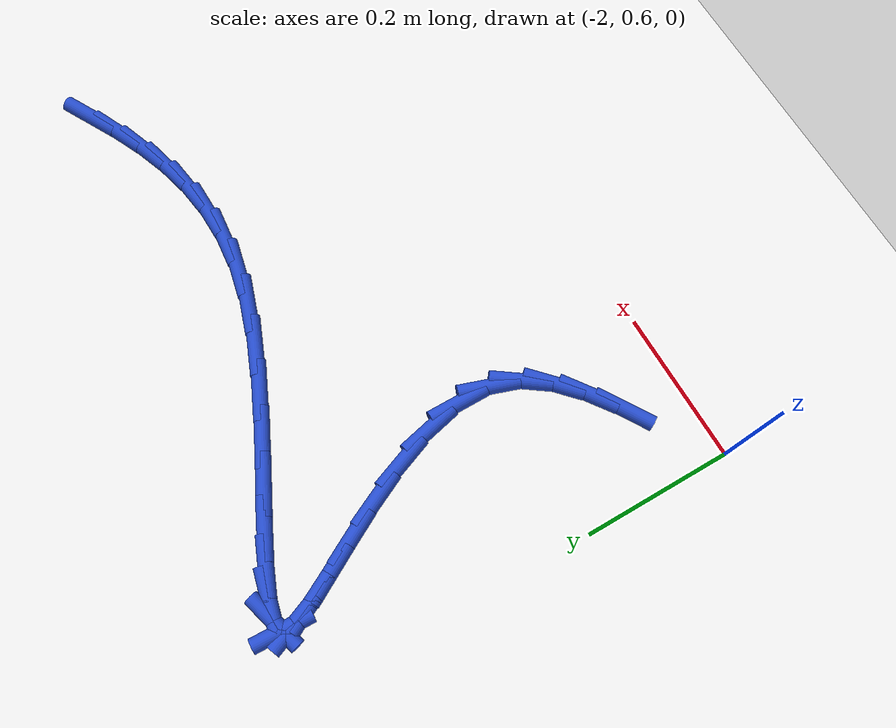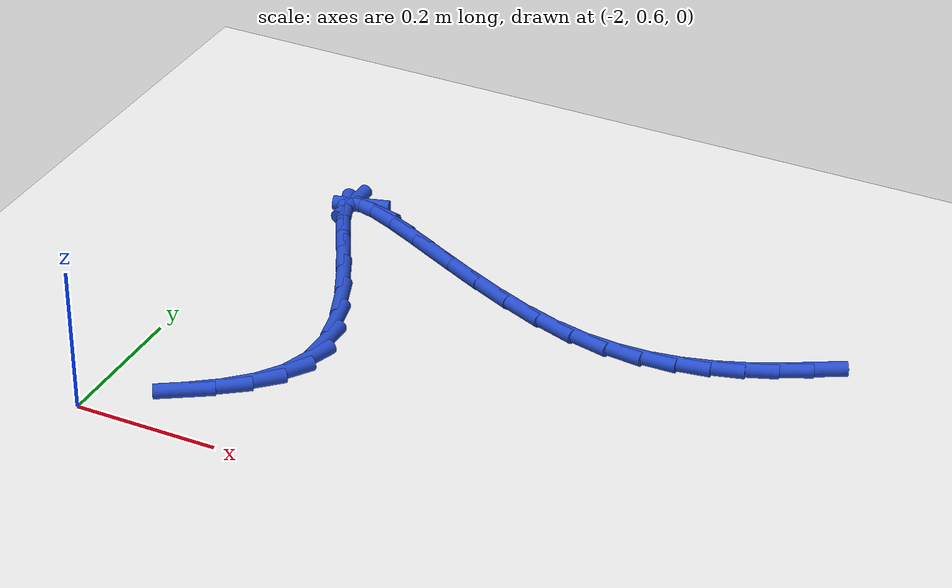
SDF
<sdf version="1.6">
 <world name="default">
  <model name="ground_plane">
   <static>1</static>
   <link name="link">
    <collision name="collision">
     <geometry><plane><normal>0 0 1</normal><size>100 100</size></plane></geometry>
     <surface><friction><ode><mu>100</mu><mu2>50</mu2></ode></friction></surface>
    </collision>
    <visual name="visual">
     <cast_shadows>0</cast_shadows>
     <geometry><plane><normal>0 0 1</normal><size>100 100</size></plane></geometry>
     <material>
      <script><uri>file://media/materials/scripts/gazebo.material</uri><name>Gazebo/WhiteGlow</name></script>
     </material>
    </visual>
   </link>
  </model>
  <model name="line">
   <link name="link_44">
    <pose>-1.1876230271420563 1.081210722739638 0.01 0 1.57 0.5052743356407918</pose>
    <collision name="collision">
     <geometry><cylinder><radius>0.01</radius><length>0.08</length></cylinder></geometry>
    </collision>
    <visual name="visual">
     <material>
      <script><name>Gazebo/Blue</name><uri>file://media/materials/scripts/gazebo.material</uri></script>
     </material>
     <geometry><cylinder><radius>0.01</radius><length>0.08</length></cylinder></geometry>
    </visual>
   </link>
   <link name="link_45">
    <pose>-1.2265779695516135 1.0596619866321677 0.01 0 1.57 0.4454856443325451</pose>
    <collision name="collision">
     <geometry><cylinder><radius>0.01</radius><length>0.08</length></cylinder></geometry>
    </collision>
    <visual name="visual">
     <material>
      <script><name>Gazebo/Blue</name><uri>file://media/materials/scripts/gazebo.material</uri></script>
     </material>
     <geometry><cylinder><radius>0.01</radius><length>0.08</length></cylinder></geometry>
    </visual>
   </link>
   <link name="link_46">
    <pose>-1.2660468766741888 1.0408156072536976 0.01 0 1.57 0.3658386041662883</pose>
    <collision name="collision">
     <geometry><cylinder><radius>0.01</radius><length>0.08</length></cylinder></geometry>
    </collision>
    <visual name="visual">
     <material>
      <script><name>Gazebo/Blue</name><uri>file://media/materials/scripts/gazebo.material</uri></script>
     </material>
     <geometry><cylinder><radius>0.01</radius><length>0.08</length></cylinder></geometry>
    </visual>
   </link>
   <link name="link_47">
    <pose>-1.3064496050049892 1.0253379918422278 0.01 0 1.57 0.26746276634169214</pose>
    <collision name="collision">
     <geometry><cylinder><radius>0.01</radius><length>0.08</length></cylinder></geometry>
    </collision>
    <visual name="visual">
     <material>
      <script><name>Gazebo/Blue</name><uri>file://media/materials/scripts/gazebo.material</uri></script>
     </material>
     <geometry><cylinder><radius>0.01</radius><length>0.08</length></cylinder></geometry>
    </visual>
   </link>
   <link name="link_48">
    <pose>-1.3482060110392238 1.0138955476357587 0.01 0 1.57 0.15363552604569491</pose>
    <collision name="collision">
     <geometry><cylinder><radius>0.01</radius><length>0.08</length></cylinder></geometry>
    </collision>
    <visual name="visual">
     <material>
      <script><name>Gazebo/Blue</name><uri>file://media/materials/scripts/gazebo.material</uri></script>
     </material>
     <geometry><cylinder><radius>0.01</radius><length>0.08</length></cylinder></geometry>
    </visual>
   </link>
   <link name="link_49">
    <pose>-1.3917359512721001 1.0071546818722896 0.01 0 1.57 0.03001679240443435</pose>
    <collision name="collision">
     <geometry><cylinder><radius>0.01</radius><length>0.08</length></cylinder></geometry>
    </collision>
    <visual name="visual">
     <material>
      <script><name>Gazebo/Blue</name><uri>file://media/materials/scripts/gazebo.material</uri></script>
     </material>
     <geometry><cylinder><radius>0.01</radius><length>0.08</length></cylinder></geometry>
    </visual>
   </link>
   <link name="link_50">
    <pose>-1.4374592821988257 1.0057818017898206 0.01 0 1.57 -0.09614130344304528</pose>
    <collision name="collision">
     <geometry><cylinder><radius>0.01</radius><length>0.08</length></cylinder></geometry>
    </collision>
    <visual name="visual">
     <material>
      <script><name>Gazebo/Blue</name><uri>file://media/materials/scripts/gazebo.material</uri></script>
     </material>
     <geometry><cylinder><radius>0.01</radius><length>0.08</length></cylinder></geometry>
    </visual>
   </link>
   <link name="link_51">
    <pose>-1.4857958603146082 1.010443314626352 0.01 0 1.57 -0.217616136208942</pose>
    <collision name="collision">
     <geometry><cylinder><radius>0.01</radius><length>0.08</length></cylinder></geometry>
    </collision>
    <visual name="visual">
     <material>
      <script><name>Gazebo/Blue</name><uri>file://media/materials/scripts/gazebo.material</uri></script>
     </material>
     <geometry><cylinder><radius>0.01</radius><length>0.08</length></cylinder></geometry>
    </visual>
   </link>
   <link name="link_52">
    <pose>-1.5371620856071457 1.0218012951915747 0.01 0 1.57 -0.31934479748372185</pose>
    <collision name="collision">
     <geometry><cylinder><radius>0.01</radius><length>0.08</length></cylinder></geometry>
    </collision>
    <visual name="visual">
     <material>
      <script><name>Gazebo/Blue</name><uri>file://media/materials/scripts/gazebo.material</uri></script>
     </material>
     <geometry><cylinder><radius>0.01</radius><length>0.08</length></cylinder></geometry>
    </visual>
   </link>
   <link name="link_53">
    <pose>-1.5913326182944183 1.03971345390816 0.01 0 1.57 -0.387315112144202</pose>
    <collision name="collision">
     <geometry><cylinder><radius>0.01</radius><length>0.08</length></cylinder></geometry>
    </collision>
    <visual name="visual">
     <material>
      <script><name>Gazebo/Blue</name><uri>file://media/materials/scripts/gazebo.material</uri></script>
     </material>
     <geometry><cylinder><radius>0.01</radius><length>0.08</length></cylinder></geometry>
    </visual>
   </link>
   <link name="link_54">
    <pose>-1.6466926309231027 1.062295900550445 0.01 0 1.57 -0.43045717931309174</pose>
    <collision name="collision">
     <geometry><cylinder><radius>0.01</radius><length>0.08</length></cylinder></geometry>
    </collision>
    <visual name="visual">
     <material>
      <script><name>Gazebo/Blue</name><uri>file://media/materials/scripts/gazebo.material</uri></script>
     </material>
     <geometry><cylinder><radius>0.01</radius><length>0.08</length></cylinder></geometry>
    </visual>
   </link>
   <link name="link_55">
    <pose>-1.7014456777028946 1.0874371022731395 0.01 0 1.57 -0.45464633257627995</pose>
    <collision name="collision">
     <geometry><cylinder><radius>0.01</radius><length>0.08</length></cylinder></geometry>
    </collision>
    <visual name="visual">
     <material>
      <script><name>Gazebo/Blue</name><uri>file://media/materials/scripts/gazebo.material</uri></script>
     </material>
     <geometry><cylinder><radius>0.01</radius><length>0.08</length></cylinder></geometry>
    </visual>
   </link>
   <link name="link_56">
    <pose>-1.753795312843489 1.1130255262309527 0.01 0 1.57 -0.46113936427236935</pose>
    <collision name="collision">
     <geometry><cylinder><radius>0.01</radius><length>0.08</length></cylinder></geometry>
    </collision>
    <visual name="visual">
     <material>
      <script><name>Gazebo/Blue</name><uri>file://media/materials/scripts/gazebo.material</uri></script>
     </material>
     <geometry><cylinder><radius>0.01</radius><length>0.08</length></cylinder></geometry>
    </visual>
   </link>
   <link name="link_57">
    <pose>-1.8019450905545826 1.1369496395785958 0.01 0 1.57 -0.44587215320055135</pose>
    <collision name="collision">
     <geometry><cylinder><radius>0.01</radius><length>0.08</length></cylinder></geometry>
    </collision>
    <visual name="visual">
     <material>
      <script><name>Gazebo/Blue</name><uri>file://media/materials/scripts/gazebo.material</uri></script>
     </material>
     <geometry><cylinder><radius>0.01</radius><length>0.08</length></cylinder></geometry>
    </visual>
   </link>
   <link name="link_58">
    <pose>-1.8440985650458723 1.1570979094707785 0.01 0 1.57 -0.39339976792522097</pose>
    <collision name="collision">
     <geometry><cylinder><radius>0.01</radius><length>0.08</length></cylinder></geometry>
    </collision>
    <visual name="visual">
     <material>
      <script><name>Gazebo/Blue</name><uri>file://media/materials/scripts/gazebo.material</uri></script>
     </material>
     <geometry><cylinder><radius>0.01</radius><length>0.08</length></cylinder></geometry>
    </visual>
   </link>
   <link name="link_59">
    <pose>-1.8784592905270527 1.1713588030622109 0.01 0 1.57 -0.24760240715004062</pose>
    <collision name="collision">
     <geometry><cylinder><radius>0.01</radius><length>0.08</length></cylinder></geometry>
    </collision>
    <visual name="visual">
     <material>
      <script><name>Gazebo/Blue</name><uri>file://media/materials/scripts/gazebo.material</uri></script>
     </material>
     <geometry><cylinder><radius>0.01</radius><length>0.08</length></cylinder></geometry>
    </visual>
   </link>
   <link name="link_60">
    <pose>-1.9032308212078206 1.1776207875076032 0.01 0 1.57 0.2799507985611413</pose>
    <collision name="collision">
     <geometry><cylinder><radius>0.01</radius><length>0.08</length></cylinder></geometry>
    </collision>
    <visual name="visual">
     <material>
      <script><name>Gazebo/Blue</name><uri>file://media/materials/scripts/gazebo.material</uri></script>
     </material>
     <geometry><cylinder><radius>0.01</radius><length>0.08</length></cylinder></geometry>
    </visual>
   </link>
   <link name="link_61">
    <pose>-1.916616711297872 1.1737723299616662 0.01 0 1.57 1.5387954735905094</pose>
    <collision name="collision">
     <geometry><cylinder><radius>0.01</radius><length>0.08</length></cylinder></geometry>
    </collision>
    <visual name="visual">
     <material>
      <script><name>Gazebo/Blue</name><uri>file://media/materials/scripts/gazebo.material</uri></script>
     </material>
     <geometry><cylinder><radius>0.01</radius><length>0.08</length></cylinder></geometry>
    </visual>
   </link>
   <link name="link_62">
    <pose>-1.9171228708050627 1.1579606666339002 0.01 0 1.57 -1.1888984299394942</pose>
    <collision name="collision">
     <geometry><cylinder><radius>0.01</radius><length>0.08</length></cylinder></geometry>
    </collision>
    <visual name="visual">
     <material>
      <script><name>Gazebo/Blue</name><uri>file://media/materials/scripts/gazebo.material</uri></script>
     </material>
     <geometry><cylinder><radius>0.01</radius><length>0.08</length></cylinder></geometry>
    </visual>
   </link>
   <link name="link_63">
    <pose>-1.9062550811095824 1.1309004522660042 0.01 0 1.57 -1.0861761299502208</pose>
    <collision name="collision">
     <geometry><cylinder><radius>0.01</radius><length>0.08</length></cylinder></geometry>
    </collision>
    <visual name="visual">
     <material>
      <script><name>Gazebo/Blue</name><uri>file://media/materials/scripts/gazebo.material</uri></script>
     </material>
     <geometry><cylinder><radius>0.01</radius><length>0.08</length></cylinder></geometry>
    </visual>
   </link>
   <link name="link_64">
    <pose>-1.8872350891223835 1.0947749384685037 0.01 0 1.57 -1.0628668324094037</pose>
    <collision name="collision">
     <geometry><cylinder><radius>0.01</radius><length>0.08</length></cylinder></geometry>
    </collision>
    <visual name="visual">
     <material>
      <script><name>Gazebo/Blue</name><uri>file://media/materials/scripts/gazebo.material</uri></script>
     </material>
     <geometry><cylinder><radius>0.01</radius><length>0.08</length></cylinder></geometry>
    </visual>
   </link>
   <link name="link_65">
    <pose>-1.8633048224129243 1.0517846483246676 0.01 0 1.57 -1.0778563651761286</pose>
    <collision name="collision">
     <geometry><cylinder><radius>0.01</radius><length>0.08</length></cylinder></geometry>
    </collision>
    <visual name="visual">
     <material>
      <script><name>Gazebo/Blue</name><uri>file://media/materials/scripts/gazebo.material</uri></script>
     </material>
     <geometry><cylinder><radius>0.01</radius><length>0.08</length></cylinder></geometry>
    </visual>
   </link>
   <link name="link_66">
    <pose>-1.8377062085506652 1.0041301049177658 0.01 0 1.57 -1.1237911565704752</pose>
    <collision name="collision">
     <geometry><cylinder><radius>0.01</radius><length>0.08</length></cylinder></geometry>
    </collision>
    <visual name="visual">
     <material>
      <script><name>Gazebo/Blue</name><uri>file://media/materials/scripts/gazebo.material</uri></script>
     </material>
     <geometry><cylinder><radius>0.01</radius><length>0.08</length></cylinder></geometry>
    </visual>
   </link>
   <link name="link_67">
    <pose>-1.8136811751050668 0.9540118313310687 0.01 0 1.57 -1.2065300113484516</pose>
    <collision name="collision">
     <geometry><cylinder><radius>0.01</radius><length>0.08</length></cylinder></geometry>
    </collision>
    <visual name="visual">
     <material>
      <script><name>Gazebo/Blue</name><uri>file://media/materials/scripts/gazebo.material</uri></script>
     </material>
     <geometry><cylinder><radius>0.01</radius><length>0.08</length></cylinder></geometry>
    </visual>
   </link>
   <link name="link_68">
    <pose>-1.7944716496455875 0.9036303506478455 0.01 0 1.57 -1.344533228156261</pose>
    <collision name="collision">
     <geometry><cylinder><radius>0.01</radius><length>0.08</length></cylinder></geometry>
    </collision>
    <visual name="visual">
     <material>
      <script><name>Gazebo/Blue</name><uri>file://media/materials/scripts/gazebo.material</uri></script>
     </material>
     <geometry><cylinder><radius>0.01</radius><length>0.08</length></cylinder></geometry>
    </visual>
   </link>
   <link name="link_69">
    <pose>-1.7833195597416875 0.8551861859513658 0.01 0 1.57 1.5677152442393496</pose>
    <collision name="collision">
     <geometry><cylinder><radius>0.01</radius><length>0.08</length></cylinder></geometry>
    </collision>
    <visual name="visual">
     <material>
      <script><name>Gazebo/Blue</name><uri>file://media/materials/scripts/gazebo.material</uri></script>
     </material>
     <geometry><cylinder><radius>0.01</radius><length>0.08</length></cylinder></geometry>
    </visual>
   </link>
   <link name="link_70">
    <pose>-1.783456090132459 0.8108738521274894 0.01 0 1.57 1.2493230273922211</pose>
    <collision name="collision">
     <geometry><cylinder><radius>0.01</radius><length>0.08</length></cylinder></geometry>
    </collision>
    <visual name="visual">
     <material>
      <script><name>Gazebo/Blue</name><uri>file://media/materials/scripts/gazebo.material</uri></script>
     </material>
     <geometry><cylinder><radius>0.01</radius><length>0.08</length></cylinder></geometry>
    </visual>
   </link>
   <link name="link_71">
    <pose>-1.796421352285184 0.7719420889073826 0.01 0 1.57 0.9634943874608078</pose>
    <collision name="collision">
     <geometry><cylinder><radius>0.01</radius><length>0.08</length></cylinder></geometry>
    </collision>
    <visual name="visual">
     <material>
      <script><name>Gazebo/Blue</name><uri>file://media/materials/scripts/gazebo.material</uri></script>
     </material>
     <geometry><cylinder><radius>0.01</radius><length>0.08</length></cylinder></geometry>
    </visual>
   </link>
   <link name="link_72">
    <pose>-1.8202363496381622 0.7376714865659054 0.01 0 1.57 0.7587868849092794</pose>
    <collision name="collision">
     <geometry><cylinder><radius>0.01</radius><length>0.08</length></cylinder></geometry>
    </collision>
    <visual name="visual">
     <material>
      <script><name>Gazebo/Blue</name><uri>file://media/materials/scripts/gazebo.material</uri></script>
     </material>
     <geometry><cylinder><radius>0.01</radius><length>0.08</length></cylinder></geometry>
    </visual>
   </link>
   <link name="link_73">
    <pose>-1.8524829445801707 0.7070970347283357 0.01 0 1.57 0.6291008036097305</pose>
    <collision name="collision">
     <geometry><cylinder><radius>0.01</radius><length>0.08</length></cylinder></geometry>
    </collision>
    <visual name="visual">
     <material>
      <script><name>Gazebo/Blue</name><uri>file://media/materials/scripts/gazebo.material</uri></script>
     </material>
     <geometry><cylinder><radius>0.01</radius><length>0.08</length></cylinder></geometry>
    </visual>
   </link>
   <link name="link_74">
    <pose>-1.8907429994999856 0.6792537230199517 0.01 0 1.57 0.5571818833671177</pose>
    <collision name="collision">
     <geometry><cylinder><radius>0.01</radius><length>0.08</length></cylinder></geometry>
    </collision>
    <visual name="visual">
     <material>
      <script><name>Gazebo/Blue</name><uri>file://media/materials/scripts/gazebo.material</uri></script>
     </material>
     <geometry><cylinder><radius>0.01</radius><length>0.08</length></cylinder></geometry>
    </visual>
   </link>
  </model>
 </world>
</sdf>
